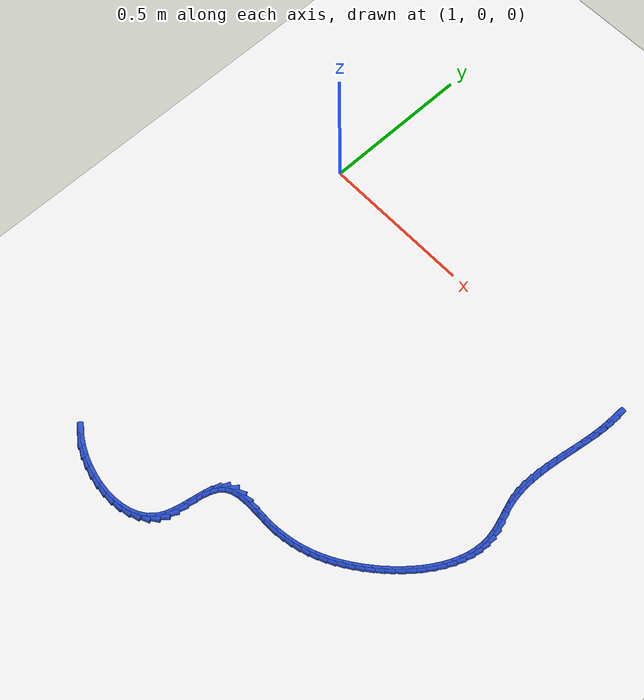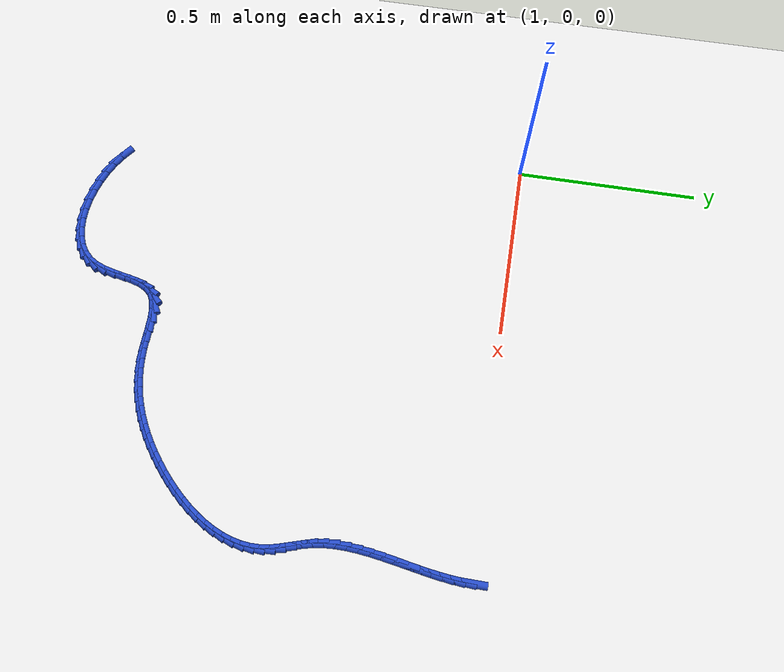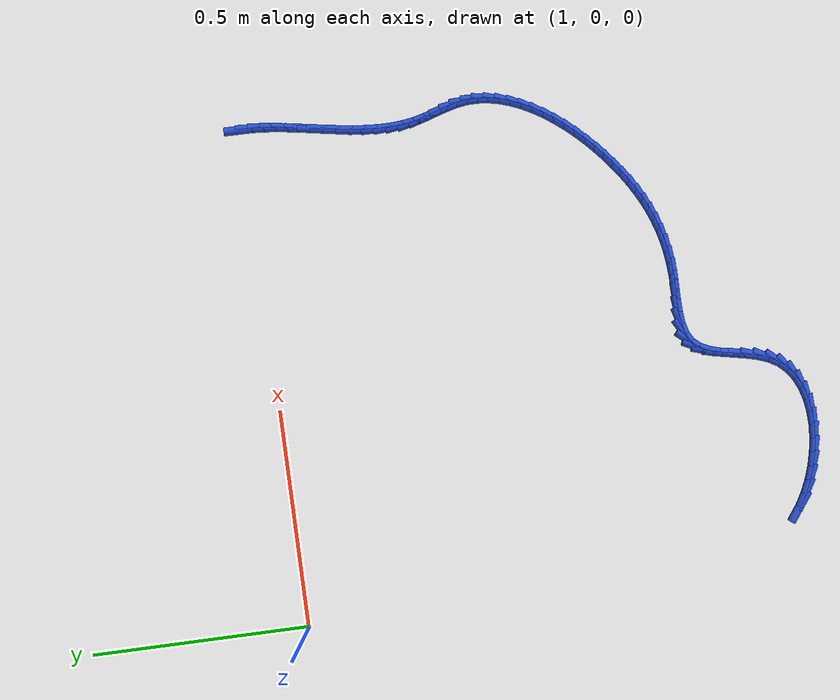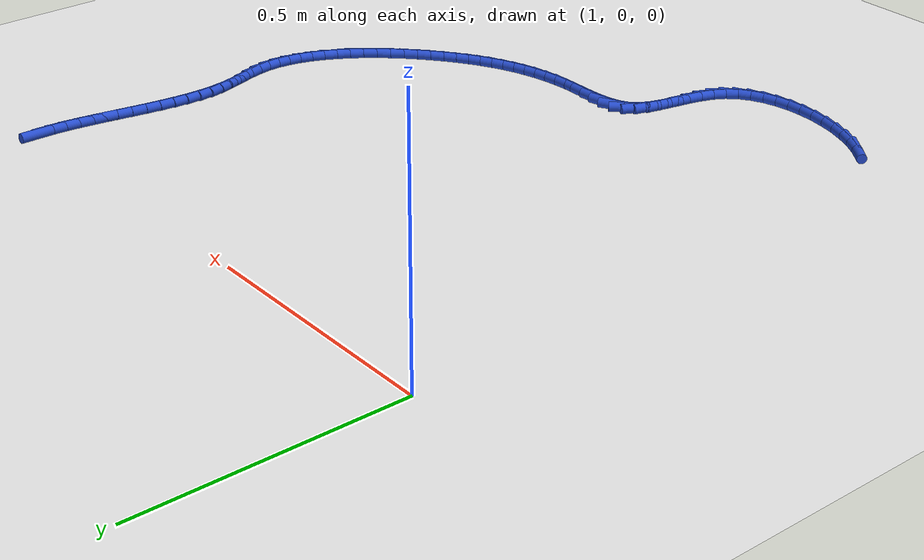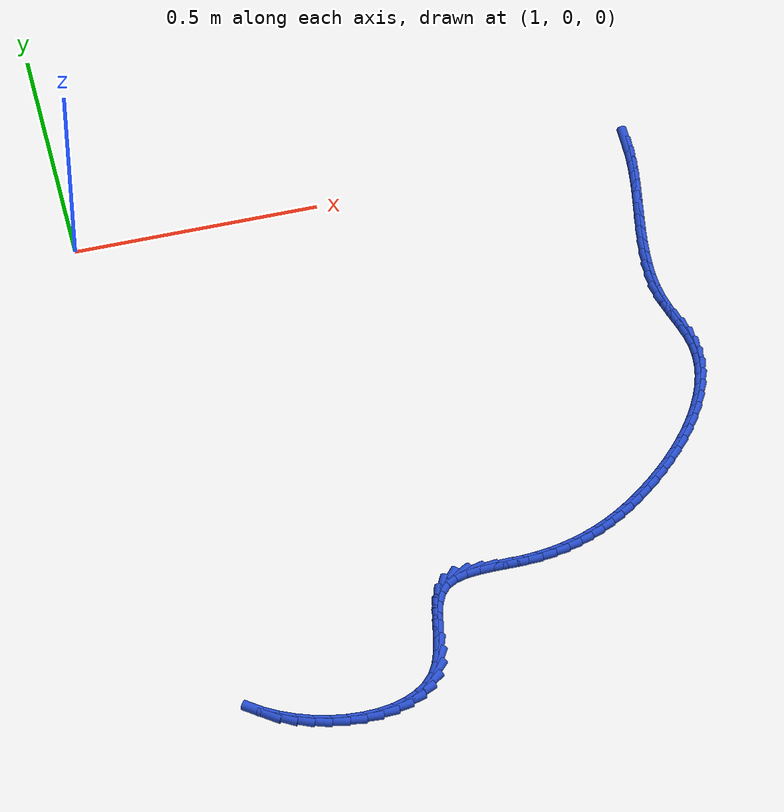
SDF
<sdf version="1.6">
 <world name="default">
  <model name="ground_plane">
   <static>1</static>
   <link name="link">
    <collision name="collision">
     <geometry><plane><normal>0 0 1</normal><size>100 100</size></plane></geometry>
     <surface><friction><ode><mu>100</mu><mu2>50</mu2></ode></friction></surface>
    </collision>
    <visual name="visual">
     <cast_shadows>0</cast_shadows>
     <geometry><plane><normal>0 0 1</normal><size>100 100</size></plane></geometry>
     <material>
      <script><uri>file://media/materials/scripts/gazebo.material</uri><name>Gazebo/WhiteGlow</name></script>
     </material>
    </visual>
   </link>
  </model>
  <model name="line">
   <link name="link_141">
    <pose>2.1507564007858284 0.0037634048922897973 0.01 0 1.57 1.5590123402955358</pose>
    <collision name="collision">
     <geometry><cylinder><radius>0.01</radius><length>0.08</length></cylinder></geometry>
    </collision>
    <visual name="visual">
     <material>
      <script><name>Gazebo/Blue</name><uri>file://media/materials/scripts/gazebo.material</uri></script>
     </material>
     <geometry><cylinder><radius>0.01</radius><length>0.08</length></cylinder></geometry>
    </visual>
   </link>
   <link name="link_142">
    <pose>2.1504466641250737 -0.022519918134248765 0.01 0 1.57 1.5009560760871101</pose>
    <collision name="collision">
     <geometry><cylinder><radius>0.01</radius><length>0.08</length></cylinder></geometry>
    </collision>
    <visual name="visual">
     <material>
      <script><name>Gazebo/Blue</name><uri>file://media/materials/scripts/gazebo.material</uri></script>
     </material>
     <geometry><cylinder><radius>0.01</radius><length>0.08</length></cylinder></geometry>
    </visual>
   </link>
   <link name="link_143">
    <pose>2.1485545006762607 -0.0495685897111756 0.01 0 1.57 1.4572871764640765</pose>
    <collision name="collision">
     <geometry><cylinder><radius>0.01</radius><length>0.08</length></cylinder></geometry>
    </collision>
    <visual name="visual">
     <material>
      <script><name>Gazebo/Blue</name><uri>file://media/materials/scripts/gazebo.material</uri></script>
     </material>
     <geometry><cylinder><radius>0.01</radius><length>0.08</length></cylinder></geometry>
    </visual>
   </link>
   <link name="link_144">
    <pose>2.1453974961669706 -0.07726181279672979 0.01 0 1.57 1.426355713292822</pose>
    <collision name="collision">
     <geometry><cylinder><radius>0.01</radius><length>0.08</length></cylinder></geometry>
    </collision>
    <visual name="visual">
     <material>
      <script><name>Gazebo/Blue</name><uri>file://media/materials/scripts/gazebo.material</uri></script>
     </material>
     <geometry><cylinder><radius>0.01</radius><length>0.08</length></cylinder></geometry>
    </visual>
   </link>
   <link name="link_145">
    <pose>2.1412932363247825 -0.10547879034915066 0.01 0 1.57 1.4068737975488779</pose>
    <collision name="collision">
     <geometry><cylinder><radius>0.01</radius><length>0.08</length></cylinder></geometry>
    </collision>
    <visual name="visual">
     <material>
      <script><name>Gazebo/Blue</name><uri>file://media/materials/scripts/gazebo.material</uri></script>
     </material>
     <geometry><cylinder><radius>0.01</radius><length>0.08</length></cylinder></geometry>
    </visual>
   </link>
   <link name="link_146">
    <pose>2.136559306877278 -0.1340987253266782 0.01 0 1.57 1.3979486225218039</pose>
    <collision name="collision">
     <geometry><cylinder><radius>0.01</radius><length>0.08</length></cylinder></geometry>
    </collision>
    <visual name="visual">
     <material>
      <script><name>Gazebo/Blue</name><uri>file://media/materials/scripts/gazebo.material</uri></script>
     </material>
     <geometry><cylinder><radius>0.01</radius><length>0.08</length></cylinder></geometry>
    </visual>
   </link>
   <link name="link_147">
    <pose>2.131513293552037 -0.16300082068754984 0.01 0 1.57 1.3990732159484687</pose>
    <collision name="collision">
     <geometry><cylinder><radius>0.01</radius><length>0.08</length></cylinder></geometry>
    </collision>
    <visual name="visual">
     <material>
      <script><name>Gazebo/Blue</name><uri>file://media/materials/scripts/gazebo.material</uri></script>
     </material>
     <geometry><cylinder><radius>0.01</radius><length>0.08</length></cylinder></geometry>
    </visual>
   </link>
   <link name="link_148">
    <pose>2.1264727820766396 -0.19206427939000564 0.01 0 1.57 1.4101054909232615</pose>
    <collision name="collision">
     <geometry><cylinder><radius>0.01</radius><length>0.08</length></cylinder></geometry>
    </collision>
    <visual name="visual">
     <material>
      <script><name>Gazebo/Blue</name><uri>file://media/materials/scripts/gazebo.material</uri></script>
     </material>
     <geometry><cylinder><radius>0.01</radius><length>0.08</length></cylinder></geometry>
    </visual>
   </link>
   <link name="link_149">
    <pose>2.1217553581786657 -0.22116830439228483 0.01 0 1.57 1.4312469437016762</pose>
    <collision name="collision">
     <geometry><cylinder><radius>0.01</radius><length>0.08</length></cylinder></geometry>
    </collision>
    <visual name="visual">
     <material>
      <script><name>Gazebo/Blue</name><uri>file://media/materials/scripts/gazebo.material</uri></script>
     </material>
     <geometry><cylinder><radius>0.01</radius><length>0.08</length></cylinder></geometry>
    </visual>
   </link>
   <link name="link_150">
    <pose>2.117678607585697 -0.2501920986526266 0.01 0 1.57 1.4630201454436351</pose>
    <collision name="collision">
     <geometry><cylinder><radius>0.01</radius><length>0.08</length></cylinder></geometry>
    </collision>
    <visual name="visual">
     <material>
      <script><name>Gazebo/Blue</name><uri>file://media/materials/scripts/gazebo.material</uri></script>
     </material>
     <geometry><cylinder><radius>0.01</radius><length>0.08</length></cylinder></geometry>
    </visual>
   </link>
   <link name="link_151">
    <pose>2.114560116025312 -0.27901486512927 0.01 0 1.57 1.5062340437919879</pose>
    <collision name="collision">
     <geometry><cylinder><radius>0.01</radius><length>0.08</length></cylinder></geometry>
    </collision>
    <visual name="visual">
     <material>
      <script><name>Gazebo/Blue</name><uri>file://media/materials/scripts/gazebo.material</uri></script>
     </material>
     <geometry><cylinder><radius>0.01</radius><length>0.08</length></cylinder></geometry>
    </visual>
   </link>
   <link name="link_152">
    <pose>2.1127174692250925 -0.3075158067804544 0.01 0 1.57 1.5619144778092853</pose>
    <collision name="collision">
     <geometry><cylinder><radius>0.01</radius><length>0.08</length></cylinder></geometry>
    </collision>
    <visual name="visual">
     <material>
      <script><name>Gazebo/Blue</name><uri>file://media/materials/scripts/gazebo.material</uri></script>
     </material>
     <geometry><cylinder><radius>0.01</radius><length>0.08</length></cylinder></geometry>
    </visual>
   </link>
   <link name="link_153">
    <pose>2.1124682529126177 -0.3355741265644189 0.01 0 1.57 -1.5104294682431323</pose>
    <collision name="collision">
     <geometry><cylinder><radius>0.01</radius><length>0.08</length></cylinder></geometry>
    </collision>
    <visual name="visual">
     <material>
      <script><name>Gazebo/Blue</name><uri>file://media/materials/scripts/gazebo.material</uri></script>
     </material>
     <geometry><cylinder><radius>0.01</radius><length>0.08</length></cylinder></geometry>
    </visual>
   </link>
   <link name="link_154">
    <pose>2.114130052815469 -0.3630690274394027 0.01 0 1.57 -1.4266957022263989</pose>
    <collision name="collision">
     <geometry><cylinder><radius>0.01</radius><length>0.08</length></cylinder></geometry>
    </collision>
    <visual name="visual">
     <material>
      <script><name>Gazebo/Blue</name><uri>file://media/materials/scripts/gazebo.material</uri></script>
     </material>
     <geometry><cylinder><radius>0.01</radius><length>0.08</length></cylinder></geometry>
    </visual>
   </link>
   <link name="link_155">
    <pose>2.1180204546612265 -0.3898797123636458 0.01 0 1.57 -1.3366098027168027</pose>
    <collision name="collision">
     <geometry><cylinder><radius>0.01</radius><length>0.08</length></cylinder></geometry>
    </collision>
    <visual name="visual">
     <material>
      <script><name>Gazebo/Blue</name><uri>file://media/materials/scripts/gazebo.material</uri></script>
     </material>
     <geometry><cylinder><radius>0.01</radius><length>0.08</length></cylinder></geometry>
    </visual>
   </link>
   <link name="link_156">
    <pose>2.124235425022851 -0.41593132333399274 0.01 0 1.57 -1.2819496477561856</pose>
    <collision name="collision">
     <geometry><cylinder><radius>0.01</radius><length>0.08</length></cylinder></geometry>
    </collision>
    <visual name="visual">
     <material>
      <script><name>Gazebo/Blue</name><uri>file://media/materials/scripts/gazebo.material</uri></script>
     </material>
     <geometry><cylinder><radius>0.01</radius><length>0.08</length></cylinder></geometry>
    </visual>
   </link>
   <link name="link_157">
    <pose>2.131795295816491 -0.4413719687335288 0.01 0 1.57 -1.2762058860611691</pose>
    <collision name="collision">
     <geometry><cylinder><radius>0.01</radius><length>0.08</length></cylinder></geometry>
    </collision>
    <visual name="visual">
     <material>
      <script><name>Gazebo/Blue</name><uri>file://media/materials/scripts/gazebo.material</uri></script>
     </material>
     <geometry><cylinder><radius>0.01</radius><length>0.08</length></cylinder></geometry>
    </visual>
   </link>
   <link name="link_158">
    <pose>2.139394524743948 -0.46641730682901006 0.01 0 1.57 -1.3214112108736615</pose>
    <collision name="collision">
     <geometry><cylinder><radius>0.01</radius><length>0.08</length></cylinder></geometry>
    </collision>
    <visual name="visual">
     <material>
      <script><name>Gazebo/Blue</name><uri>file://media/materials/scripts/gazebo.material</uri></script>
     </material>
     <geometry><cylinder><radius>0.01</radius><length>0.08</length></cylinder></geometry>
    </visual>
   </link>
   <link name="link_159">
    <pose>2.1457274975300007 -0.4912830108071806 0.01 0 1.57 -1.420284349947844</pose>
    <collision name="collision">
     <geometry><cylinder><radius>0.01</radius><length>0.08</length></cylinder></geometry>
    </collision>
    <visual name="visual">
     <material>
      <script><name>Gazebo/Blue</name><uri>file://media/materials/scripts/gazebo.material</uri></script>
     </material>
     <geometry><cylinder><radius>0.01</radius><length>0.08</length></cylinder></geometry>
    </visual>
   </link>
   <link name="link_160">
    <pose>2.1495035974672465 -0.5161816431387095 0.01 0 1.57 -1.548750366736803</pose>
    <collision name="collision">
     <geometry><cylinder><radius>0.01</radius><length>0.08</length></cylinder></geometry>
    </collision>
    <visual name="visual">
     <material>
      <script><name>Gazebo/Blue</name><uri>file://media/materials/scripts/gazebo.material</uri></script>
     </material>
     <geometry><cylinder><radius>0.01</radius><length>0.08</length></cylinder></geometry>
    </visual>
   </link>
   <link name="link_161">
    <pose>2.150055164596205 -0.5411965559053697 0.01 0 1.57 1.4709963392044978</pose>
    <collision name="collision">
     <geometry><cylinder><radius>0.01</radius><length>0.08</length></cylinder></geometry>
    </collision>
    <visual name="visual">
     <material>
      <script><name>Gazebo/Blue</name><uri>file://media/materials/scripts/gazebo.material</uri></script>
     </material>
     <geometry><cylinder><radius>0.01</radius><length>0.08</length></cylinder></geometry>
    </visual>
   </link>
   <link name="link_162">
    <pose>2.1475476686098918 -0.5662382978494456 0.01 0 1.57 1.3599765682684277</pose>
    <collision name="collision">
     <geometry><cylinder><radius>0.01</radius><length>0.08</length></cylinder></geometry>
    </collision>
    <visual name="visual">
     <material>
      <script><name>Gazebo/Blue</name><uri>file://media/materials/scripts/gazebo.material</uri></script>
     </material>
     <geometry><cylinder><radius>0.01</radius><length>0.08</length></cylinder></geometry>
    </visual>
   </link>
   <link name="link_163">
    <pose>2.1422047281311807 -0.5912053567701999 0.01 0 1.57 1.2602999358028428</pose>
    <collision name="collision">
     <geometry><cylinder><radius>0.01</radius><length>0.08</length></cylinder></geometry>
    </collision>
    <visual name="visual">
     <material>
      <script><name>Gazebo/Blue</name><uri>file://media/materials/scripts/gazebo.material</uri></script>
     </material>
     <geometry><cylinder><radius>0.01</radius><length>0.08</length></cylinder></geometry>
    </visual>
   </link>
   <link name="link_164">
    <pose>2.1342499617829462 -0.6159962204668965 0.01 0 1.57 1.171524104044321</pose>
    <collision name="collision">
     <geometry><cylinder><radius>0.01</radius><length>0.08</length></cylinder></geometry>
    </collision>
    <visual name="visual">
     <material>
      <script><name>Gazebo/Blue</name><uri>file://media/materials/scripts/gazebo.material</uri></script>
     </material>
     <geometry><cylinder><radius>0.01</radius><length>0.08</length></cylinder></geometry>
    </visual>
   </link>
   <link name="link_165">
    <pose>2.123906988188064 -0.6405093767387968 0.01 0 1.57 1.0926506554998008</pose>
    <collision name="collision">
     <geometry><cylinder><radius>0.01</radius><length>0.08</length></cylinder></geometry>
    </collision>
    <visual name="visual">
     <material>
      <script><name>Gazebo/Blue</name><uri>file://media/materials/scripts/gazebo.material</uri></script>
     </material>
     <geometry><cylinder><radius>0.01</radius><length>0.08</length></cylinder></geometry>
    </visual>
   </link>
   <link name="link_166">
    <pose>2.1113994259694078 -0.6646433133851645 0.01 0 1.57 1.0224379191850295</pose>
    <collision name="collision">
     <geometry><cylinder><radius>0.01</radius><length>0.08</length></cylinder></geometry>
    </collision>
    <visual name="visual">
     <material>
      <script><name>Gazebo/Blue</name><uri>file://media/materials/scripts/gazebo.material</uri></script>
     </material>
     <geometry><cylinder><radius>0.01</radius><length>0.08</length></cylinder></geometry>
    </visual>
   </link>
   <link name="link_167">
    <pose>2.0969508937498533 -0.6882965182052627 0.01 0 1.57 0.9595989341385144</pose>
    <collision name="collision">
     <geometry><cylinder><radius>0.01</radius><length>0.08</length></cylinder></geometry>
    </collision>
    <visual name="visual">
     <material>
      <script><name>Gazebo/Blue</name><uri>file://media/materials/scripts/gazebo.material</uri></script>
     </material>
     <geometry><cylinder><radius>0.01</radius><length>0.08</length></cylinder></geometry>
    </visual>
   </link>
   <link name="link_168">
    <pose>2.080785010152275 -0.7113674789983546 0.01 0 1.57 0.902905831994998</pose>
    <collision name="collision">
     <geometry><cylinder><radius>0.01</radius><length>0.08</length></cylinder></geometry>
    </collision>
    <visual name="visual">
     <material>
      <script><name>Gazebo/Blue</name><uri>file://media/materials/scripts/gazebo.material</uri></script>
     </material>
     <geometry><cylinder><radius>0.01</radius><length>0.08</length></cylinder></geometry>
    </visual>
   </link>
   <link name="link_169">
    <pose>2.0631253937995466 -0.7337546835637029 0.01 0 1.57 0.8512317266386904</pose>
    <collision name="collision">
     <geometry><cylinder><radius>0.01</radius><length>0.08</length></cylinder></geometry>
    </collision>
    <visual name="visual">
     <material>
      <script><name>Gazebo/Blue</name><uri>file://media/materials/scripts/gazebo.material</uri></script>
     </material>
     <geometry><cylinder><radius>0.01</radius><length>0.08</length></cylinder></geometry>
    </visual>
   </link>
   <link name="link_170">
    <pose>2.044195663314543 -0.7553566197005706 0.01 0 1.57 0.8035555293632576</pose>
    <collision name="collision">
     <geometry><cylinder><radius>0.01</radius><length>0.08</length></cylinder></geometry>
    </collision>
    <visual name="visual">
     <material>
      <script><name>Gazebo/Blue</name><uri>file://media/materials/scripts/gazebo.material</uri></script>
     </material>
     <geometry><cylinder><radius>0.01</radius><length>0.08</length></cylinder></geometry>
    </visual>
   </link>
   <link name="link_171">
    <pose>2.02421943732014 -0.7760717752082209 0.01 0 1.57 0.7589462308416344</pose>
    <collision name="collision">
     <geometry><cylinder><radius>0.01</radius><length>0.08</length></cylinder></geometry>
    </collision>
    <visual name="visual">
     <material>
      <script><name>Gazebo/Blue</name><uri>file://media/materials/scripts/gazebo.material</uri></script>
     </material>
     <geometry><cylinder><radius>0.01</radius><length>0.08</length></cylinder></geometry>
    </visual>
   </link>
   <link name="link_172">
    <pose>2.003420334439212 -0.7957986378859171 0.01 0 1.57 0.7165357044868896</pose>
    <collision name="collision">
     <geometry><cylinder><radius>0.01</radius><length>0.08</length></cylinder></geometry>
    </collision>
    <visual name="visual">
     <material>
      <script><name>Gazebo/Blue</name><uri>file://media/materials/scripts/gazebo.material</uri></script>
     </material>
     <geometry><cylinder><radius>0.01</radius><length>0.08</length></cylinder></geometry>
    </visual>
   </link>
   <link name="link_173">
    <pose>1.9820219732946323 -0.8144356955329222 0.01 0 1.57 0.6754837169747133</pose>
    <collision name="collision">
     <geometry><cylinder><radius>0.01</radius><length>0.08</length></cylinder></geometry>
    </collision>
    <visual name="visual">
     <material>
      <script><name>Gazebo/Blue</name><uri>file://media/materials/scripts/gazebo.material</uri></script>
     </material>
     <geometry><cylinder><radius>0.01</radius><length>0.08</length></cylinder></geometry>
    </visual>
   </link>
   <link name="link_174">
    <pose>1.9602479725092778 -0.8318814359484984 0.01 0 1.57 0.6342588720730503</pose>
    <collision name="collision">
     <geometry><cylinder><radius>0.01</radius><length>0.08</length></cylinder></geometry>
    </collision>
    <visual name="visual">
     <material>
      <script><name>Gazebo/Blue</name><uri>file://media/materials/scripts/gazebo.material</uri></script>
     </material>
     <geometry><cylinder><radius>0.01</radius><length>0.08</length></cylinder></geometry>
    </visual>
   </link>
   <link name="link_175">
    <pose>1.9382747022316344 -0.8480462482518852 0.01 0 1.57 0.5893893324497684</pose>
    <collision name="collision">
     <geometry><cylinder><radius>0.01</radius><length>0.08</length></cylinder></geometry>
    </collision>
    <visual name="visual">
     <material>
      <script><name>Gazebo/Blue</name><uri>file://media/materials/scripts/gazebo.material</uri></script>
     </material>
     <geometry><cylinder><radius>0.01</radius><length>0.08</length></cylinder></geometry>
    </visual>
   </link>
   <link name="link_176">
    <pose>1.916072046727296 -0.8628925328620444 0.01 0 1.57 0.5401985029497267</pose>
    <collision name="collision">
     <geometry><cylinder><radius>0.01</radius><length>0.08</length></cylinder></geometry>
    </collision>
    <visual name="visual">
     <material>
      <script><name>Gazebo/Blue</name><uri>file://media/materials/scripts/gazebo.material</uri></script>
     </material>
     <geometry><cylinder><radius>0.01</radius><length>0.08</length></cylinder></geometry>
    </visual>
   </link>
   <link name="link_177">
    <pose>1.893553498503567 -0.8763968946006861 0.01 0 1.57 0.4870499622097023</pose>
    <collision name="collision">
     <geometry><cylinder><radius>0.01</radius><length>0.08</length></cylinder></geometry>
    </collision>
    <visual name="visual">
     <material>
      <script><name>Gazebo/Blue</name><uri>file://media/materials/scripts/gazebo.material</uri></script>
     </material>
     <geometry><cylinder><radius>0.01</radius><length>0.08</length></cylinder></geometry>
    </visual>
   </link>
   <link name="link_178">
    <pose>1.8706325487420261 -0.8885359386234536 0.01 0 1.57 0.43049673115948556</pose>
    <collision name="collision">
     <geometry><cylinder><radius>0.01</radius><length>0.08</length></cylinder></geometry>
    </collision>
    <visual name="visual">
     <material>
      <script><name>Gazebo/Blue</name><uri>file://media/materials/scripts/gazebo.material</uri></script>
     </material>
     <geometry><cylinder><radius>0.01</radius><length>0.08</length></cylinder></geometry>
    </visual>
   </link>
   <link name="link_179">
    <pose>1.847222688624255 -0.89928627008599 0.01 0 1.57 0.3712756722143815</pose>
    <collision name="collision">
     <geometry><cylinder><radius>0.01</radius><length>0.08</length></cylinder></geometry>
    </collision>
    <visual name="visual">
     <material>
      <script><name>Gazebo/Blue</name><uri>file://media/materials/scripts/gazebo.material</uri></script>
     </material>
     <geometry><cylinder><radius>0.01</radius><length>0.08</length></cylinder></geometry>
    </visual>
   </link>
   <link name="link_180">
    <pose>1.8232374093318338 -0.9086244941439393 0.01 0 1.57 0.31027754827216053</pose>
    <collision name="collision">
     <geometry><cylinder><radius>0.01</radius><length>0.08</length></cylinder></geometry>
    </collision>
    <visual name="visual">
     <material>
      <script><name>Gazebo/Blue</name><uri>file://media/materials/scripts/gazebo.material</uri></script>
     </material>
     <geometry><cylinder><radius>0.01</radius><length>0.08</length></cylinder></geometry>
    </visual>
   </link>
   <link name="link_181">
    <pose>1.7985902020463416 -0.9165272159529448 0.01 0 1.57 0.24849311143649397</pose>
    <collision name="collision">
     <geometry><cylinder><radius>0.01</radius><length>0.08</length></cylinder></geometry>
    </collision>
    <visual name="visual">
     <material>
      <script><name>Gazebo/Blue</name><uri>file://media/materials/scripts/gazebo.material</uri></script>
     </material>
     <geometry><cylinder><radius>0.01</radius><length>0.08</length></cylinder></geometry>
    </visual>
   </link>
   <link name="link_182">
    <pose>1.7731945579493607 -0.9229710406686495 0.01 0 1.57 0.1869420504875565</pose>
    <collision name="collision">
     <geometry><cylinder><radius>0.01</radius><length>0.08</length></cylinder></geometry>
    </collision>
    <visual name="visual">
     <material>
      <script><name>Gazebo/Blue</name><uri>file://media/materials/scripts/gazebo.material</uri></script>
     </material>
     <geometry><cylinder><radius>0.01</radius><length>0.08</length></cylinder></geometry>
    </visual>
   </link>
   <link name="link_183">
    <pose>1.7469639682224707 -0.9279325734466972 0.01 0 1.57 0.1265968853040125</pose>
    <collision name="collision">
     <geometry><cylinder><radius>0.01</radius><length>0.08</length></cylinder></geometry>
    </collision>
    <visual name="visual">
     <material>
      <script><name>Gazebo/Blue</name><uri>file://media/materials/scripts/gazebo.material</uri></script>
     </material>
     <geometry><cylinder><radius>0.01</radius><length>0.08</length></cylinder></geometry>
    </visual>
   </link>
   <link name="link_184">
    <pose>1.7198119240472516 -0.9313884194427311 0.01 0 1.57 0.06831553682780563</pose>
    <collision name="collision">
     <geometry><cylinder><radius>0.01</radius><length>0.08</length></cylinder></geometry>
    </collision>
    <visual name="visual">
     <material>
      <script><name>Gazebo/Blue</name><uri>file://media/materials/scripts/gazebo.material</uri></script>
     </material>
     <geometry><cylinder><radius>0.01</radius><length>0.08</length></cylinder></geometry>
    </visual>
   </link>
   <link name="link_185">
    <pose>1.691651916605284 -0.9333151838123948 0.01 0 1.57 0.016705694787698705</pose>
    <collision name="collision">
     <geometry><cylinder><radius>0.01</radius><length>0.08</length></cylinder></geometry>
    </collision>
    <visual name="visual">
     <material>
      <script><name>Gazebo/Blue</name><uri>file://media/materials/scripts/gazebo.material</uri></script>
     </material>
     <geometry><cylinder><radius>0.01</radius><length>0.08</length></cylinder></geometry>
    </visual>
   </link>
   <link name="link_186">
    <pose>1.6624980686787147 -0.9338022644101092 0.01 0 1.57 -0.0011165433222775775</pose>
    <collision name="collision">
     <geometry><cylinder><radius>0.01</radius><length>0.08</length></cylinder></geometry>
    </collision>
    <visual name="visual">
     <material>
      <script><name>Gazebo/Blue</name><uri>file://media/materials/scripts/gazebo.material</uri></script>
     </material>
     <geometry><cylinder><radius>0.01</radius><length>0.08</length></cylinder></geometry>
    </visual>
   </link>
   <link name="link_187">
    <pose>1.633105359338577 -0.933769446163134 0.01 0 1.57 0.02584731292684668</pose>
    <collision name="collision">
     <geometry><cylinder><radius>0.01</radius><length>0.08</length></cylinder></geometry>
    </collision>
    <visual name="visual">
     <material>
      <script><name>Gazebo/Blue</name><uri>file://media/materials/scripts/gazebo.material</uri></script>
     </material>
     <geometry><cylinder><radius>0.01</radius><length>0.08</length></cylinder></geometry>
    </visual>
   </link>
   <link name="link_188">
    <pose>1.6045597003045158 -0.9345074390991996 0.01 0 1.57 0.10487925428503221</pose>
    <collision name="collision">
     <geometry><cylinder><radius>0.01</radius><length>0.08</length></cylinder></geometry>
    </collision>
    <visual name="visual">
     <material>
      <script><name>Gazebo/Blue</name><uri>file://media/materials/scripts/gazebo.material</uri></script>
     </material>
     <geometry><cylinder><radius>0.01</radius><length>0.08</length></cylinder></geometry>
    </visual>
   </link>
   <link name="link_189">
    <pose>1.577948540418791 -0.9373086761263926 0.01 0 1.57 0.2553096590962706</pose>
    <collision name="collision">
     <geometry><cylinder><radius>0.01</radius><length>0.08</length></cylinder></geometry>
    </collision>
    <visual name="visual">
     <material>
      <script><name>Gazebo/Blue</name><uri>file://media/materials/scripts/gazebo.material</uri></script>
     </material>
     <geometry><cylinder><radius>0.01</radius><length>0.08</length></cylinder></geometry>
    </visual>
   </link>
   <link name="link_190">
    <pose>1.5543593285236599 -0.9434655901527995 0.01 0 1.57 0.5064276333409062</pose>
    <collision name="collision">
     <geometry><cylinder><radius>0.01</radius><length>0.08</length></cylinder></geometry>
    </collision>
    <visual name="visual">
     <material>
      <script><name>Gazebo/Blue</name><uri>file://media/materials/scripts/gazebo.material</uri></script>
     </material>
     <geometry><cylinder><radius>0.01</radius><length>0.08</length></cylinder></geometry>
    </visual>
   </link>
   <link name="link_191">
    <pose>1.5348795134613822 -0.9542706140865059 0.01 0 1.57 0.8464167489967782</pose>
    <collision name="collision">
     <geometry><cylinder><radius>0.01</radius><length>0.08</length></cylinder></geometry>
    </collision>
    <visual name="visual">
     <material>
      <script><name>Gazebo/Blue</name><uri>file://media/materials/scripts/gazebo.material</uri></script>
     </material>
     <geometry><cylinder><radius>0.01</radius><length>0.08</length></cylinder></geometry>
    </visual>
   </link>
   <link name="link_192">
    <pose>1.5203249980388345 -0.9707192492631385 0.01 0 1.57 1.1184310021480057</pose>
    <collision name="collision">
     <geometry><cylinder><radius>0.01</radius><length>0.08</length></cylinder></geometry>
    </collision>
    <visual name="visual">
     <material>
      <script><name>Gazebo/Blue</name><uri>file://media/materials/scripts/gazebo.material</uri></script>
     </material>
     <geometry><cylinder><radius>0.01</radius><length>0.08</length></cylinder></geometry>
    </visual>
   </link>
   <link name="link_193">
    <pose>1.5099400778868266 -0.9920884678215183 0.01 0 1.57 1.2774974053878234</pose>
    <collision name="collision">
     <geometry><cylinder><radius>0.01</radius><length>0.08</length></cylinder></geometry>
    </collision>
    <visual name="visual">
     <material>
      <script><name>Gazebo/Blue</name><uri>file://media/materials/scripts/gazebo.material</uri></script>
     </material>
     <geometry><cylinder><radius>0.01</radius><length>0.08</length></cylinder></geometry>
    </visual>
   </link>
   <link name="link_194">
    <pose>1.5024049654226108 -1.0170384252514424 0.01 0 1.57 1.353403861586528</pose>
    <collision name="collision">
     <geometry><cylinder><radius>0.01</radius><length>0.08</length></cylinder></geometry>
    </collision>
    <visual name="visual">
     <material>
      <script><name>Gazebo/Blue</name><uri>file://media/materials/scripts/gazebo.material</uri></script>
     </material>
     <geometry><cylinder><radius>0.01</radius><length>0.08</length></cylinder></geometry>
    </visual>
   </link>
   <link name="link_195">
    <pose>1.496399142629286 -1.0442284783237659 0.01 0 1.57 1.3672758287179736</pose>
    <collision name="collision">
     <geometry><cylinder><radius>0.01</radius><length>0.08</length></cylinder></geometry>
    </collision>
    <visual name="visual">
     <material>
      <script><name>Gazebo/Blue</name><uri>file://media/materials/scripts/gazebo.material</uri></script>
     </material>
     <geometry><cylinder><radius>0.01</radius><length>0.08</length></cylinder></geometry>
    </visual>
   </link>
   <link name="link_196">
    <pose>1.490602091489949 -1.072317983809342 0.01 0 1.57 1.3259293609527707</pose>
    <collision name="collision">
     <geometry><cylinder><radius>0.01</radius><length>0.08</length></cylinder></geometry>
    </collision>
    <visual name="visual">
     <material>
      <script><name>Gazebo/Blue</name><uri>file://media/materials/scripts/gazebo.material</uri></script>
     </material>
     <geometry><cylinder><radius>0.01</radius><length>0.08</length></cylinder></geometry>
    </visual>
   </link>
   <link name="link_197">
    <pose>1.4836932939876981 -1.0999662984790264 0.01 0 1.57 1.2242441816522034</pose>
    <collision name="collision">
     <geometry><cylinder><radius>0.01</radius><length>0.08</length></cylinder></geometry>
    </collision>
    <visual name="visual">
     <material>
      <script><name>Gazebo/Blue</name><uri>file://media/materials/scripts/gazebo.material</uri></script>
     </material>
     <geometry><cylinder><radius>0.01</radius><length>0.08</length></cylinder></geometry>
    </visual>
   </link>
   <link name="link_198">
    <pose>1.4743522321056306 -1.1258327791036724 0.01 0 1.57 1.048929583493253</pose>
    <collision name="collision">
     <geometry><cylinder><radius>0.01</radius><length>0.08</length></cylinder></geometry>
    </collision>
    <visual name="visual">
     <material>
      <script><name>Gazebo/Blue</name><uri>file://media/materials/scripts/gazebo.material</uri></script>
     </material>
     <geometry><cylinder><radius>0.01</radius><length>0.08</length></cylinder></geometry>
    </visual>
   </link>
   <link name="link_199">
    <pose>1.4612688101750293 -1.148584847099097 0.01 0 1.57 0.8238549977659644</pose>
    <collision name="collision">
     <geometry><cylinder><radius>0.01</radius><length>0.08</length></cylinder></geometry>
    </collision>
    <visual name="visual">
     <material>
      <script><name>Gazebo/Blue</name><uri>file://media/materials/scripts/gazebo.material</uri></script>
     </material>
     <geometry><cylinder><radius>0.01</radius><length>0.08</length></cylinder></geometry>
    </visual>
   </link>
   <link name="link_200">
    <pose>1.4438246039854596 -1.1674251281020709 0.01 0 1.57 0.6130428753067383</pose>
    <collision name="collision">
     <geometry><cylinder><radius>0.01</radius><length>0.08</length></cylinder></geometry>
    </collision>
    <visual name="visual">
     <material>
      <script><name>Gazebo/Blue</name><uri>file://media/materials/scripts/gazebo.material</uri></script>
     </material>
     <geometry><cylinder><radius>0.01</radius><length>0.08</length></cylinder></geometry>
    </visual>
   </link>
   <link name="link_201">
    <pose>1.422513266361481 -1.1824167550263878 0.01 0 1.57 0.43030171807328177</pose>
    <collision name="collision">
     <geometry><cylinder><radius>0.01</radius><length>0.08</length></cylinder></geometry>
    </collision>
    <visual name="visual">
     <material>
      <script><name>Gazebo/Blue</name><uri>file://media/materials/scripts/gazebo.material</uri></script>
     </material>
     <geometry><cylinder><radius>0.01</radius><length>0.08</length></cylinder></geometry>
    </visual>
   </link>
   <link name="link_202">
    <pose>1.3979289437703635 -1.193700621146072 0.01 0 1.57 0.27584018369770336</pose>
    <collision name="collision">
     <geometry><cylinder><radius>0.01</radius><length>0.08</length></cylinder></geometry>
    </collision>
    <visual name="visual">
     <material>
      <script><name>Gazebo/Blue</name><uri>file://media/materials/scripts/gazebo.material</uri></script>
     </material>
     <geometry><cylinder><radius>0.01</radius><length>0.08</length></cylinder></geometry>
    </visual>
   </link>
   <link name="link_203">
    <pose>1.3706657826793778 -1.2014176197351472 0.01 0 1.57 0.14518379413182406</pose>
    <collision name="collision">
     <geometry><cylinder><radius>0.01</radius><length>0.08</length></cylinder></geometry>
    </collision>
    <visual name="visual">
     <material>
      <script><name>Gazebo/Blue</name><uri>file://media/materials/scripts/gazebo.material</uri></script>
     </material>
     <geometry><cylinder><radius>0.01</radius><length>0.08</length></cylinder></geometry>
    </visual>
   </link>
   <link name="link_204">
    <pose>1.3413179295557913 -1.205708644067636 0.01 0 1.57 0.03260826851664032</pose>
    <collision name="collision">
     <geometry><cylinder><radius>0.01</radius><length>0.08</length></cylinder></geometry>
    </collision>
    <visual name="visual">
     <material>
      <script><name>Gazebo/Blue</name><uri>file://media/materials/scripts/gazebo.material</uri></script>
     </material>
     <geometry><cylinder><radius>0.01</radius><length>0.08</length></cylinder></geometry>
    </visual>
   </link>
   <link name="link_205">
    <pose>1.3104795308668744 -1.206714587417562 0.01 0 1.57 -0.0672768541426966</pose>
    <collision name="collision">
     <geometry><cylinder><radius>0.01</radius><length>0.08</length></cylinder></geometry>
    </collision>
    <visual name="visual">
     <material>
      <script><name>Gazebo/Blue</name><uri>file://media/materials/scripts/gazebo.material</uri></script>
     </material>
     <geometry><cylinder><radius>0.01</radius><length>0.08</length></cylinder></geometry>
    </visual>
   </link>
   <link name="link_206">
    <pose>1.2787447330798958 -1.2045763430589498 0.01 0 1.57 -0.1591303342873101</pose>
    <collision name="collision">
     <geometry><cylinder><radius>0.01</radius><length>0.08</length></cylinder></geometry>
    </collision>
    <visual name="visual">
     <material>
      <script><name>Gazebo/Blue</name><uri>file://media/materials/scripts/gazebo.material</uri></script>
     </material>
     <geometry><cylinder><radius>0.01</radius><length>0.08</length></cylinder></geometry>
    </visual>
   </link>
   <link name="link_207">
    <pose>1.2467076826621253 -1.1994348042658214 0.01 0 1.57 -0.24698335802012525</pose>
    <collision name="collision">
     <geometry><cylinder><radius>0.01</radius><length>0.08</length></cylinder></geometry>
    </collision>
    <visual name="visual">
     <material>
      <script><name>Gazebo/Blue</name><uri>file://media/materials/scripts/gazebo.material</uri></script>
     </material>
     <geometry><cylinder><radius>0.01</radius><length>0.08</length></cylinder></geometry>
    </visual>
   </link>
   <link name="link_208">
    <pose>1.214962526080831 -1.1914308643122007 0.01 0 1.57 -0.33450099196678795</pose>
    <collision name="collision">
     <geometry><cylinder><radius>0.01</radius><length>0.08</length></cylinder></geometry>
    </collision>
    <visual name="visual">
     <material>
      <script><name>Gazebo/Blue</name><uri>file://media/materials/scripts/gazebo.material</uri></script>
     </material>
     <geometry><cylinder><radius>0.01</radius><length>0.08</length></cylinder></geometry>
    </visual>
   </link>
   <link name="link_209">
    <pose>1.1841034098032837 -1.1807054164721111 0.01 0 1.57 -0.42527270171285564</pose>
    <collision name="collision">
     <geometry><cylinder><radius>0.01</radius><length>0.08</length></cylinder></geometry>
    </collision>
    <visual name="visual">
     <material>
      <script><name>Gazebo/Blue</name><uri>file://media/materials/scripts/gazebo.material</uri></script>
     </material>
     <geometry><cylinder><radius>0.01</radius><length>0.08</length></cylinder></geometry>
    </visual>
   </link>
   <link name="link_210">
    <pose>1.154724480296753 -1.1673993540195768 0.01 0 1.57 -0.5230895849210536</pose>
    <collision name="collision">
     <geometry><cylinder><radius>0.01</radius><length>0.08</length></cylinder></geometry>
    </collision>
    <visual name="visual">
     <material>
      <script><name>Gazebo/Blue</name><uri>file://media/materials/scripts/gazebo.material</uri></script>
     </material>
     <geometry><cylinder><radius>0.01</radius><length>0.08</length></cylinder></geometry>
    </visual>
   </link>
   <link name="link_211">
    <pose>1.1274198840285066 -1.1516535702286208 0.01 0 1.57 -0.6321712195752226</pose>
    <collision name="collision">
     <geometry><cylinder><radius>0.01</radius><length>0.08</length></cylinder></geometry>
    </collision>
    <visual name="visual">
     <material>
      <script><name>Gazebo/Blue</name><uri>file://media/materials/scripts/gazebo.material</uri></script>
     </material>
     <geometry><cylinder><radius>0.01</radius><length>0.08</length></cylinder></geometry>
    </visual>
   </link>
  </model>
 </world>
</sdf>
